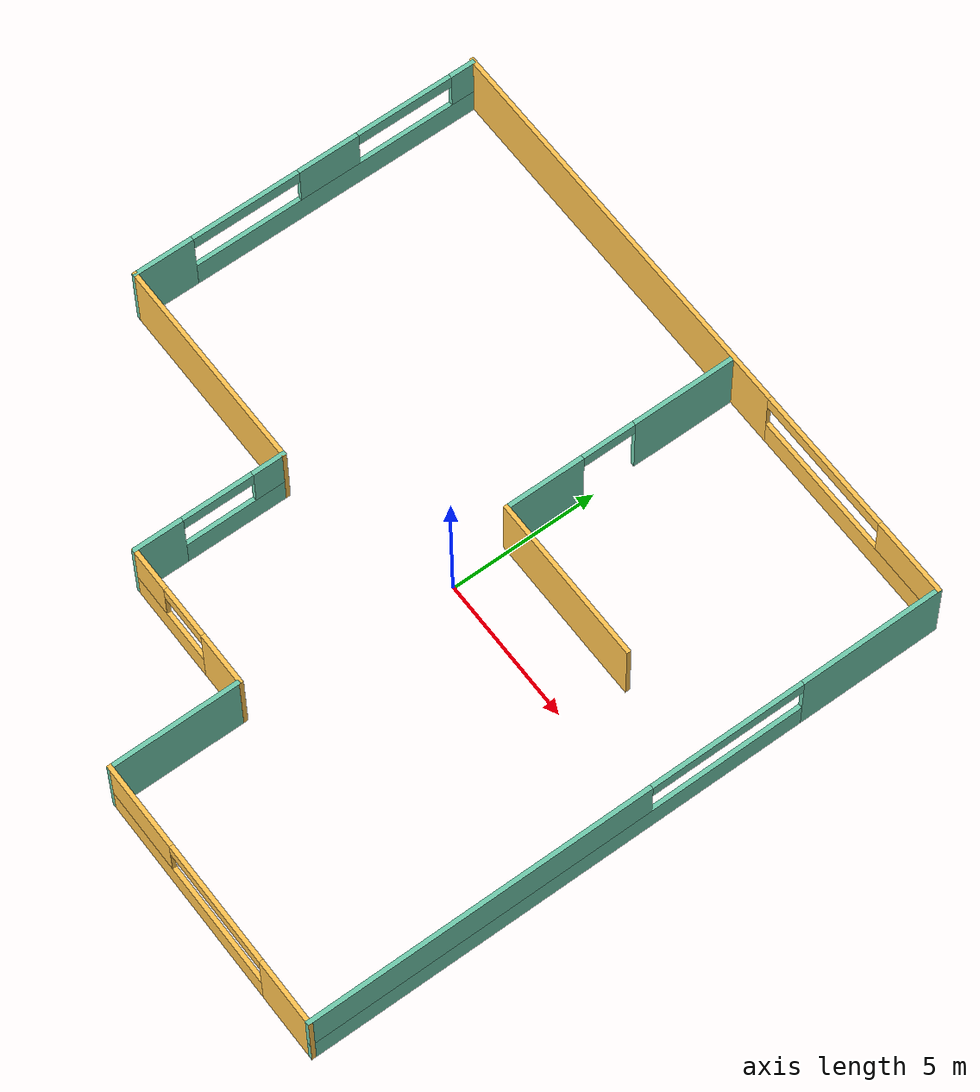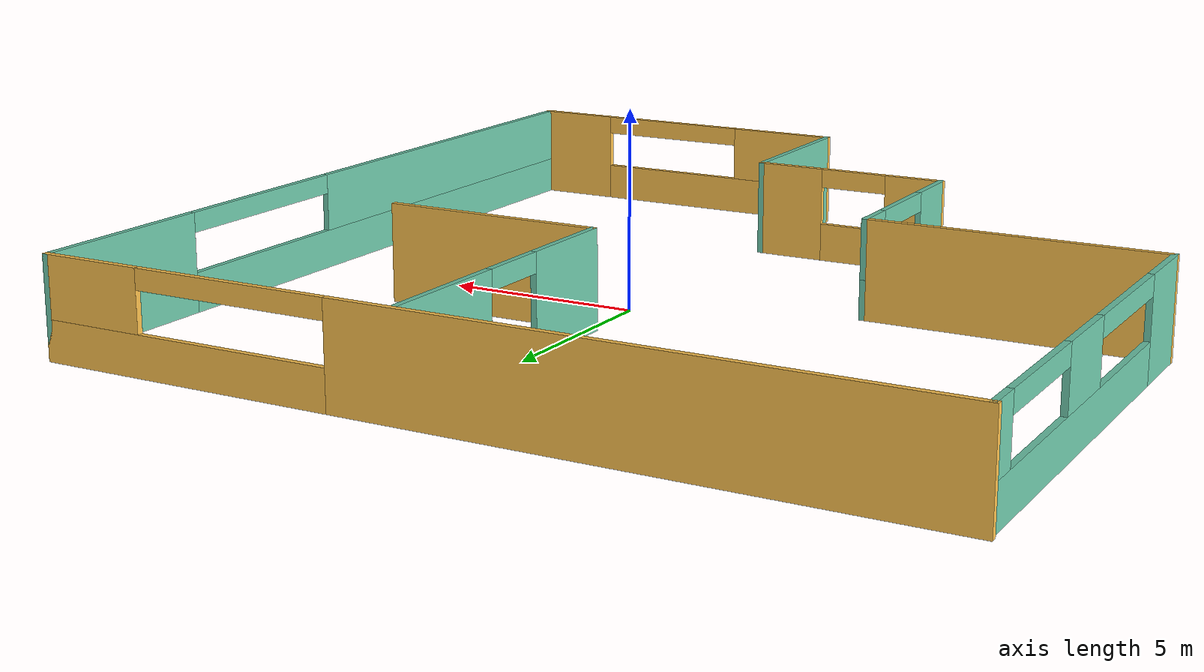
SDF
<?xml version='1.0'?>
<sdf version='1.6'>
  <model name='ground_floor'>
    <pose frame=''>-1.75056 -0.703882 0 0 -0 0</pose>
    <link name='Wall_0'>
      <pose frame=''>-1e-06 10.8 0 0 -0 0</pose>
      <visual name='Wall_0_Visual_0'>
        <pose frame=''>-3.85063 0 1.25 0 -0 0</pose>
        <geometry>
          <box>
            <size>14.2987 0.15 2.5</size>
          </box>
        </geometry>
        <material>
          <script>
            <uri>file://media/materials/scripts/gazebo.material</uri>
            <name>Gazebo/Grey</name>
          </script>
          <ambient>1 0.764706 0.305882 1</ambient>
        </material>
        <meta>
          <layer>0</layer>
        </meta>
      </visual>
      <collision name='Wall_0_Collision_0'>
        <geometry>
          <box>
            <size>14.2987 0.15 2.5</size>
          </box>
        </geometry>
        <pose frame=''>-3.85063 0 1.25 0 -0 0</pose>
      </collision>
      <visual name='Wall_0_Visual_1'>
        <pose frame=''>7.14937 0 0.5 0 -0 0</pose>
        <geometry>
          <box>
            <size>7.70126 0.15 1</size>
          </box>
        </geometry>
        <material>
          <script>
            <uri>file://media/materials/scripts/gazebo.material</uri>
            <name>Gazebo/Grey</name>
          </script>
          <ambient>1 0.764706 0.305882 1</ambient>
        </material>
        <meta>
          <layer>0</layer>
        </meta>
      </visual>
      <collision name='Wall_0_Collision_1'>
        <geometry>
          <box>
            <size>7.70126 0.15 1</size>
          </box>
        </geometry>
        <pose frame=''>7.14937 0 0.5 0 -0 0</pose>
      </collision>
      <visual name='Wall_0_Visual_2'>
        <pose frame=''>9.66137 0 1.75 0 -0 0</pose>
        <geometry>
          <box>
            <size>2.67726 0.15 1.5</size>
          </box>
        </geometry>
        <material>
          <script>
            <uri>file://media/materials/scripts/gazebo.material</uri>
            <name>Gazebo/Grey</name>
          </script>
          <ambient>1 0.764706 0.305882 1</ambient>
        </material>
        <meta>
          <layer>0</layer>
        </meta>
      </visual>
      <collision name='Wall_0_Collision_2'>
        <geometry>
          <box>
            <size>2.67726 0.15 1.5</size>
          </box>
        </geometry>
        <pose frame=''>9.66137 0 1.75 0 -0 0</pose>
      </collision>
      <visual name='Wall_0_Visual_3'>
        <pose frame=''>5.81074 0 2.25 0 -0 0</pose>
        <geometry>
          <box>
            <size>5.024 0.15 0.5</size>
          </box>
        </geometry>
        <material>
          <script>
            <uri>file://media/materials/scripts/gazebo.material</uri>
            <name>Gazebo/Grey</name>
          </script>
          <ambient>1 0.764706 0.305882 1</ambient>
        </material>
        <meta>
          <layer>0</layer>
        </meta>
      </visual>
      <collision name='Wall_0_Collision_3'>
        <geometry>
          <box>
            <size>5.024 0.15 0.5</size>
          </box>
        </geometry>
        <pose frame=''>5.81074 0 2.25 0 -0 0</pose>
      </collision>
    </link>
    <link name='Wall_1'>
      <pose frame=''>10.925 0 0 0 0 -1.5708</pose>
      <visual name='Wall_1_Visual_0'>
        <pose frame=''>-8.42693 0 1.25 0 -0 0</pose>
        <geometry>
          <box>
            <size>4.89614 0.15 2.5</size>
          </box>
        </geometry>
        <material>
          <script>
            <uri>file://media/materials/scripts/gazebo.material</uri>
            <name>Gazebo/Grey</name>
          </script>
          <ambient>0.435294 0.796078 0.67451 1</ambient>
        </material>
        <meta>
          <layer>0</layer>
        </meta>
      </visual>
      <collision name='Wall_1_Collision_0'>
        <geometry>
          <box>
            <size>4.89614 0.15 2.5</size>
          </box>
        </geometry>
        <pose frame=''>-8.42693 0 1.25 0 -0 0</pose>
      </collision>
      <visual name='Wall_1_Visual_1'>
        <pose frame=''>2.44807 0 0.5 0 -0 0</pose>
        <geometry>
          <box>
            <size>16.8539 0.15 1</size>
          </box>
        </geometry>
        <material>
          <script>
            <uri>file://media/materials/scripts/gazebo.material</uri>
            <name>Gazebo/Grey</name>
          </script>
          <ambient>0.435294 0.796078 0.67451 1</ambient>
        </material>
        <meta>
          <layer>0</layer>
        </meta>
      </visual>
      <collision name='Wall_1_Collision_1'>
        <geometry>
          <box>
            <size>16.8539 0.15 1</size>
          </box>
        </geometry>
        <pose frame=''>2.44807 0 0.5 0 -0 0</pose>
      </collision>
      <visual name='Wall_1_Visual_2'>
        <pose frame=''>5.08057 0 1.75 0 -0 0</pose>
        <geometry>
          <box>
            <size>11.5889 0.15 1.5</size>
          </box>
        </geometry>
        <material>
          <script>
            <uri>file://media/materials/scripts/gazebo.material</uri>
            <name>Gazebo/Grey</name>
          </script>
          <ambient>0.435294 0.796078 0.67451 1</ambient>
        </material>
        <meta>
          <layer>0</layer>
        </meta>
      </visual>
      <collision name='Wall_1_Collision_2'>
        <geometry>
          <box>
            <size>11.5889 0.15 1.5</size>
          </box>
        </geometry>
        <pose frame=''>5.08057 0 1.75 0 -0 0</pose>
      </collision>
      <visual name='Wall_1_Visual_3'>
        <pose frame=''>-3.34636 0 2.25 0 -0 0</pose>
        <geometry>
          <box>
            <size>5.265 0.15 0.5</size>
          </box>
        </geometry>
        <material>
          <script>
            <uri>file://media/materials/scripts/gazebo.material</uri>
            <name>Gazebo/Grey</name>
          </script>
          <ambient>0.435294 0.796078 0.67451 1</ambient>
        </material>
        <meta>
          <layer>0</layer>
        </meta>
      </visual>
      <collision name='Wall_1_Collision_3'>
        <geometry>
          <box>
            <size>5.265 0.15 0.5</size>
          </box>
        </geometry>
        <pose frame=''>-3.34636 0 2.25 0 -0 0</pose>
      </collision>
    </link>
    <link name='Wall_10'>
      <collision name='Wall_10_Collision'>
        <geometry>
          <box>
            <size>5.75 0.15 2.5</size>
          </box>
        </geometry>
        <pose frame=''>0 0 1.25 0 -0 0</pose>
      </collision>
      <visual name='Wall_10_Visual'>
        <pose frame=''>0 0 1.25 0 -0 0</pose>
        <geometry>
          <box>
            <size>5.75 0.15 2.5</size>
          </box>
        </geometry>
        <material>
          <script>
            <uri>file://media/materials/scripts/gazebo.material</uri>
            <name>Gazebo/Grey</name>
          </script>
          <ambient>1 0.764706 0.305882 1</ambient>
        </material>
        <meta>
          <layer>0</layer>
        </meta>
      </visual>
      <pose frame=''>4.43646 2.7 0 0 -0 0</pose>
    </link>
    <link name='Wall_2'>
      <pose frame=''>6.25 -10.8 0 0 -0 3.14159</pose>
      <visual name='Wall_2_Visual_0'>
        <pose frame=''>-3.60608 0 1.25 0 -0 0</pose>
        <geometry>
          <box>
            <size>2.28785 0.15 2.5</size>
          </box>
        </geometry>
        <material>
          <script>
            <uri>file://media/materials/scripts/gazebo.material</uri>
            <name>Gazebo/Grey</name>
          </script>
          <ambient>1 0.764706 0.305882 1</ambient>
        </material>
        <meta>
          <layer>0</layer>
        </meta>
      </visual>
      <collision name='Wall_2_Collision_0'>
        <geometry>
          <box>
            <size>2.28785 0.15 2.5</size>
          </box>
        </geometry>
        <pose frame=''>-3.60608 0 1.25 0 -0 0</pose>
      </collision>
      <visual name='Wall_2_Visual_1'>
        <pose frame=''>1.14393 0 0.5 0 -0 0</pose>
        <geometry>
          <box>
            <size>7.21215 0.15 1</size>
          </box>
        </geometry>
        <material>
          <script>
            <uri>file://media/materials/scripts/gazebo.material</uri>
            <name>Gazebo/Grey</name>
          </script>
          <ambient>1 0.764706 0.305882 1</ambient>
        </material>
        <meta>
          <layer>0</layer>
        </meta>
      </visual>
      <collision name='Wall_2_Collision_1'>
        <geometry>
          <box>
            <size>7.21215 0.15 1</size>
          </box>
        </geometry>
        <pose frame=''>1.14393 0 0.5 0 -0 0</pose>
      </collision>
      <visual name='Wall_2_Visual_2'>
        <pose frame=''>3.24993 0 1.75 0 -0 0</pose>
        <geometry>
          <box>
            <size>3.00015 0.15 1.5</size>
          </box>
        </geometry>
        <material>
          <script>
            <uri>file://media/materials/scripts/gazebo.material</uri>
            <name>Gazebo/Grey</name>
          </script>
          <ambient>1 0.764706 0.305882 1</ambient>
        </material>
        <meta>
          <layer>0</layer>
        </meta>
      </visual>
      <collision name='Wall_2_Collision_2'>
        <geometry>
          <box>
            <size>3.00015 0.15 1.5</size>
          </box>
        </geometry>
        <pose frame=''>3.24993 0 1.75 0 -0 0</pose>
      </collision>
      <visual name='Wall_2_Visual_3'>
        <pose frame=''>-0.35615 0 2.25 0 -0 0</pose>
        <geometry>
          <box>
            <size>4.212 0.15 0.5</size>
          </box>
        </geometry>
        <material>
          <script>
            <uri>file://media/materials/scripts/gazebo.material</uri>
            <name>Gazebo/Grey</name>
          </script>
          <ambient>1 0.764706 0.305882 1</ambient>
        </material>
        <meta>
          <layer>0</layer>
        </meta>
      </visual>
      <collision name='Wall_2_Collision_3'>
        <geometry>
          <box>
            <size>4.212 0.15 0.5</size>
          </box>
        </geometry>
        <pose frame=''>-0.35615 0 2.25 0 -0 0</pose>
      </collision>
    </link>
    <link name='Wall_3'>
      <collision name='Wall_3_Collision'>
        <geometry>
          <box>
            <size>4.5 0.15 2.5</size>
          </box>
        </geometry>
        <pose frame=''>0 0 1.25 0 -0 0</pose>
      </collision>
      <visual name='Wall_3_Visual'>
        <pose frame=''>0 0 1.25 0 -0 0</pose>
        <geometry>
          <box>
            <size>4.5 0.15 2.5</size>
          </box>
        </geometry>
        <material>
          <script>
            <uri>file://media/materials/scripts/gazebo.material</uri>
            <name>Gazebo/Grey</name>
          </script>
          <ambient>0.435294 0.796078 0.67451 1</ambient>
        </material>
        <meta>
          <layer>0</layer>
        </meta>
      </visual>
      <pose frame=''>1.575 -8.625 0 0 -0 1.5708</pose>
    </link>
    <link name='Wall_4'>
      <pose frame=''>-0.975001 -6.45 0 0 -0 3.14159</pose>
      <visual name='Wall_4_Visual_0'>
        <pose frame=''>-1.69584 0 1.25 0 -0 0</pose>
        <geometry>
          <box>
            <size>1.85833 0.15 2.5</size>
          </box>
        </geometry>
        <material>
          <script>
            <uri>file://media/materials/scripts/gazebo.material</uri>
            <name>Gazebo/Grey</name>
          </script>
          <ambient>1 0.764706 0.305882 1</ambient>
        </material>
        <meta>
          <layer>0</layer>
        </meta>
      </visual>
      <collision name='Wall_4_Collision_0'>
        <geometry>
          <box>
            <size>1.85833 0.15 2.5</size>
          </box>
        </geometry>
        <pose frame=''>-1.69584 0 1.25 0 -0 0</pose>
      </collision>
      <visual name='Wall_4_Visual_1'>
        <pose frame=''>0.929163 0 0.5 0 -0 0</pose>
        <geometry>
          <box>
            <size>3.39167 0.15 1</size>
          </box>
        </geometry>
        <material>
          <script>
            <uri>file://media/materials/scripts/gazebo.material</uri>
            <name>Gazebo/Grey</name>
          </script>
          <ambient>1 0.764706 0.305882 1</ambient>
        </material>
        <meta>
          <layer>0</layer>
        </meta>
      </visual>
      <collision name='Wall_4_Collision_1'>
        <geometry>
          <box>
            <size>3.39167 0.15 1</size>
          </box>
        </geometry>
        <pose frame=''>0.929163 0 0.5 0 -0 0</pose>
      </collision>
      <visual name='Wall_4_Visual_2'>
        <pose frame=''>1.82916 0 1.75 0 -0 0</pose>
        <geometry>
          <box>
            <size>1.59167 0.15 1.5</size>
          </box>
        </geometry>
        <material>
          <script>
            <uri>file://media/materials/scripts/gazebo.material</uri>
            <name>Gazebo/Grey</name>
          </script>
          <ambient>1 0.764706 0.305882 1</ambient>
        </material>
        <meta>
          <layer>0</layer>
        </meta>
      </visual>
      <collision name='Wall_4_Collision_2'>
        <geometry>
          <box>
            <size>1.59167 0.15 1.5</size>
          </box>
        </geometry>
        <pose frame=''>1.82916 0 1.75 0 -0 0</pose>
      </collision>
      <visual name='Wall_4_Visual_3'>
        <pose frame=''>0.133326 0 2.25 0 -0 0</pose>
        <geometry>
          <box>
            <size>1.8 0.15 0.5</size>
          </box>
        </geometry>
        <material>
          <script>
            <uri>file://media/materials/scripts/gazebo.material</uri>
            <name>Gazebo/Grey</name>
          </script>
          <ambient>1 0.764706 0.305882 1</ambient>
        </material>
        <meta>
          <layer>0</layer>
        </meta>
      </visual>
      <collision name='Wall_4_Collision_3'>
        <geometry>
          <box>
            <size>1.8 0.15 0.5</size>
          </box>
        </geometry>
        <pose frame=''>0.133326 0 2.25 0 -0 0</pose>
      </collision>
    </link>
    <link name='Wall_5'>
      <pose frame=''>-3.525 -3.9 0 0 -0 1.5708</pose>
      <visual name='Wall_5_Visual_0'>
        <pose frame=''>-1.78127 0 1.25 0 -0 0</pose>
        <geometry>
          <box>
            <size>1.68745 0.15 2.5</size>
          </box>
        </geometry>
        <material>
          <script>
            <uri>file://media/materials/scripts/gazebo.material</uri>
            <name>Gazebo/Grey</name>
          </script>
          <ambient>0.435294 0.796078 0.67451 1</ambient>
        </material>
        <meta>
          <layer>0</layer>
        </meta>
      </visual>
      <collision name='Wall_5_Collision_0'>
        <geometry>
          <box>
            <size>1.68745 0.15 2.5</size>
          </box>
        </geometry>
        <pose frame=''>-1.78127 0 1.25 0 -0 0</pose>
      </collision>
      <visual name='Wall_5_Visual_1'>
        <pose frame=''>0.843725 0 0.5 0 -0 0</pose>
        <geometry>
          <box>
            <size>3.56255 0.15 1</size>
          </box>
        </geometry>
        <material>
          <script>
            <uri>file://media/materials/scripts/gazebo.material</uri>
            <name>Gazebo/Grey</name>
          </script>
          <ambient>0.435294 0.796078 0.67451 1</ambient>
        </material>
        <meta>
          <layer>0</layer>
        </meta>
      </visual>
      <collision name='Wall_5_Collision_1'>
        <geometry>
          <box>
            <size>3.56255 0.15 1</size>
          </box>
        </geometry>
        <pose frame=''>0.843725 0 0.5 0 -0 0</pose>
      </collision>
      <visual name='Wall_5_Visual_2'>
        <pose frame=''>2.04822 0 1.75 0 -0 0</pose>
        <geometry>
          <box>
            <size>1.15355 0.15 1.5</size>
          </box>
        </geometry>
        <material>
          <script>
            <uri>file://media/materials/scripts/gazebo.material</uri>
            <name>Gazebo/Grey</name>
          </script>
          <ambient>0.435294 0.796078 0.67451 1</ambient>
        </material>
        <meta>
          <layer>0</layer>
        </meta>
      </visual>
      <collision name='Wall_5_Collision_2'>
        <geometry>
          <box>
            <size>1.15355 0.15 1.5</size>
          </box>
        </geometry>
        <pose frame=''>2.04822 0 1.75 0 -0 0</pose>
      </collision>
      <visual name='Wall_5_Visual_3'>
        <pose frame=''>0.266949 0 2.25 0 -0 0</pose>
        <geometry>
          <box>
            <size>2.409 0.15 0.5</size>
          </box>
        </geometry>
        <material>
          <script>
            <uri>file://media/materials/scripts/gazebo.material</uri>
            <name>Gazebo/Grey</name>
          </script>
          <ambient>0.435294 0.796078 0.67451 1</ambient>
        </material>
        <meta>
          <layer>0</layer>
        </meta>
      </visual>
      <collision name='Wall_5_Collision_3'>
        <geometry>
          <box>
            <size>2.409 0.15 0.5</size>
          </box>
        </geometry>
        <pose frame=''>0.266949 0 2.25 0 -0 0</pose>
      </collision>
    </link>
    <link name='Wall_6'>
      <collision name='Wall_6_Collision'>
        <geometry>
          <box>
            <size>7.5 0.15 2.5</size>
          </box>
        </geometry>
        <pose frame=''>0 0 1.25 0 -0 0</pose>
      </collision>
      <visual name='Wall_6_Visual'>
        <pose frame=''>0 0 1.25 0 -0 0</pose>
        <geometry>
          <box>
            <size>7.5 0.15 2.5</size>
          </box>
        </geometry>
        <material>
          <script>
            <uri>file://media/materials/scripts/gazebo.material</uri>
            <name>Gazebo/Grey</name>
          </script>
          <ambient>1 0.764706 0.305882 1</ambient>
        </material>
        <meta>
          <layer>0</layer>
        </meta>
      </visual>
      <pose frame=''>-7.2 -1.35 0 0 -0 3.14159</pose>
    </link>
    <link name='Wall_7'>
      <pose frame=''>-10.875 4.7 0 0 -0 1.5708</pose>
      <visual name='Wall_7_Visual_0'>
        <pose frame=''>-5.08309 0 1.25 0 -0 0</pose>
        <geometry>
          <box>
            <size>2.08381 0.15 2.5</size>
          </box>
        </geometry>
        <material>
          <script>
            <uri>file://media/materials/scripts/gazebo.material</uri>
            <name>Gazebo/Grey</name>
          </script>
          <ambient>0.435294 0.796078 0.67451 1</ambient>
        </material>
        <meta>
          <layer>0</layer>
        </meta>
      </visual>
      <collision name='Wall_7_Collision_0'>
        <geometry>
          <box>
            <size>2.08381 0.15 2.5</size>
          </box>
        </geometry>
        <pose frame=''>-5.08309 0 1.25 0 -0 0</pose>
      </collision>
      <visual name='Wall_7_Visual_1'>
        <pose frame=''>1.04191 0 0.5 0 -0 0</pose>
        <geometry>
          <box>
            <size>10.1662 0.15 1</size>
          </box>
        </geometry>
        <material>
          <script>
            <uri>file://media/materials/scripts/gazebo.material</uri>
            <name>Gazebo/Grey</name>
          </script>
          <ambient>0.435294 0.796078 0.67451 1</ambient>
        </material>
        <meta>
          <layer>0</layer>
        </meta>
      </visual>
      <collision name='Wall_7_Collision_1'>
        <geometry>
          <box>
            <size>10.1662 0.15 1</size>
          </box>
        </geometry>
        <pose frame=''>1.04191 0 0.5 0 -0 0</pose>
      </collision>
      <visual name='Wall_7_Visual_2'>
        <pose frame=''>0.7888 0 1.75 0 -0 0</pose>
        <geometry>
          <box>
            <size>2.13598 0.15 1.5</size>
          </box>
        </geometry>
        <material>
          <script>
            <uri>file://media/materials/scripts/gazebo.material</uri>
            <name>Gazebo/Grey</name>
          </script>
          <ambient>0.435294 0.796078 0.67451 1</ambient>
        </material>
        <meta>
          <layer>0</layer>
        </meta>
      </visual>
      <collision name='Wall_7_Collision_2'>
        <geometry>
          <box>
            <size>2.13598 0.15 1.5</size>
          </box>
        </geometry>
        <pose frame=''>0.7888 0 1.75 0 -0 0</pose>
      </collision>
      <visual name='Wall_7_Visual_3'>
        <pose frame=''>5.67389 0 1.75 0 -0 0</pose>
        <geometry>
          <box>
            <size>0.902212 0.15 1.5</size>
          </box>
        </geometry>
        <material>
          <script>
            <uri>file://media/materials/scripts/gazebo.material</uri>
            <name>Gazebo/Grey</name>
          </script>
          <ambient>0.435294 0.796078 0.67451 1</ambient>
        </material>
        <meta>
          <layer>0</layer>
        </meta>
      </visual>
      <collision name='Wall_7_Collision_3'>
        <geometry>
          <box>
            <size>0.902212 0.15 1.5</size>
          </box>
        </geometry>
        <pose frame=''>5.67389 0 1.75 0 -0 0</pose>
      </collision>
      <visual name='Wall_7_Visual_4'>
        <pose frame=''>-2.16019 0 2.25 0 -0 0</pose>
        <geometry>
          <box>
            <size>3.762 0.15 0.5</size>
          </box>
        </geometry>
        <material>
          <script>
            <uri>file://media/materials/scripts/gazebo.material</uri>
            <name>Gazebo/Grey</name>
          </script>
          <ambient>0.435294 0.796078 0.67451 1</ambient>
        </material>
        <meta>
          <layer>0</layer>
        </meta>
      </visual>
      <collision name='Wall_7_Collision_4'>
        <geometry>
          <box>
            <size>3.762 0.15 0.5</size>
          </box>
        </geometry>
        <pose frame=''>-2.16019 0 2.25 0 -0 0</pose>
      </collision>
      <visual name='Wall_7_Visual_5'>
        <pose frame=''>3.53979 0 2.25 0 -0 0</pose>
        <geometry>
          <box>
            <size>3.366 0.15 0.5</size>
          </box>
        </geometry>
        <material>
          <script>
            <uri>file://media/materials/scripts/gazebo.material</uri>
            <name>Gazebo/Grey</name>
          </script>
          <ambient>0.435294 0.796078 0.67451 1</ambient>
        </material>
        <meta>
          <layer>0</layer>
        </meta>
      </visual>
      <collision name='Wall_7_Collision_5'>
        <geometry>
          <box>
            <size>3.366 0.15 0.5</size>
          </box>
        </geometry>
        <pose frame=''>3.53979 0 2.25 0 -0 0</pose>
      </collision>
    </link>
    <link name='Wall_9'>
      <pose frame=''>1.63646 6.75 0 0 0 -1.5708</pose>
      <visual name='Wall_9_Visual_0'>
        <pose frame=''>-2.28522 0 1.25 0 -0 0</pose>
        <geometry>
          <box>
            <size>3.67956 0.15 2.5</size>
          </box>
        </geometry>
        <material>
          <script>
            <uri>file://media/materials/scripts/gazebo.material</uri>
            <name>Gazebo/Grey</name>
          </script>
          <ambient>0.435294 0.796078 0.67451 1</ambient>
        </material>
        <meta>
          <layer>0</layer>
        </meta>
      </visual>
      <collision name='Wall_9_Collision_0'>
        <geometry>
          <box>
            <size>3.67956 0.15 2.5</size>
          </box>
        </geometry>
        <pose frame=''>-2.28522 0 1.25 0 -0 0</pose>
      </collision>
      <visual name='Wall_9_Visual_1'>
        <pose frame=''>2.75228 0 1.25 0 -0 0</pose>
        <geometry>
          <box>
            <size>2.74544 0.15 2.5</size>
          </box>
        </geometry>
        <material>
          <script>
            <uri>file://media/materials/scripts/gazebo.material</uri>
            <name>Gazebo/Grey</name>
          </script>
          <ambient>0.435294 0.796078 0.67451 1</ambient>
        </material>
        <meta>
          <layer>0</layer>
        </meta>
      </visual>
      <collision name='Wall_9_Collision_1'>
        <geometry>
          <box>
            <size>2.74544 0.15 2.5</size>
          </box>
        </geometry>
        <pose frame=''>2.75228 0 1.25 0 -0 0</pose>
      </collision>
      <visual name='Wall_9_Visual_2'>
        <pose frame=''>0.46706 0 2.25 0 -0 0</pose>
        <geometry>
          <box>
            <size>1.825 0.15 0.5</size>
          </box>
        </geometry>
        <material>
          <script>
            <uri>file://media/materials/scripts/gazebo.material</uri>
            <name>Gazebo/Grey</name>
          </script>
          <ambient>0.435294 0.796078 0.67451 1</ambient>
        </material>
        <meta>
          <layer>0</layer>
        </meta>
      </visual>
      <collision name='Wall_9_Collision_2'>
        <geometry>
          <box>
            <size>1.825 0.15 0.5</size>
          </box>
        </geometry>
        <pose frame=''>0.46706 0 2.25 0 -0 0</pose>
      </collision>
    </link>
    <static>1</static>
  </model>
</sdf>
